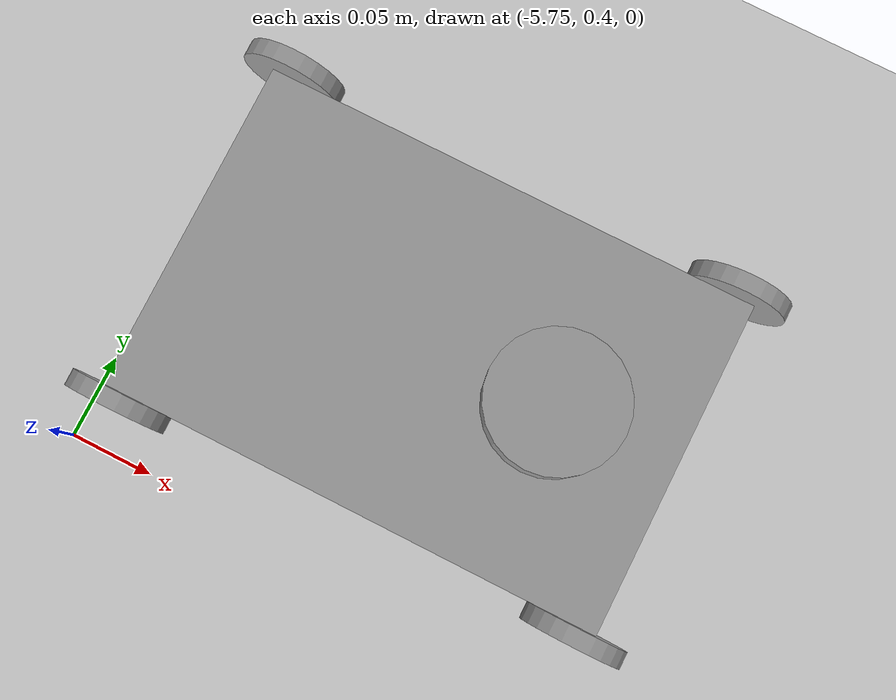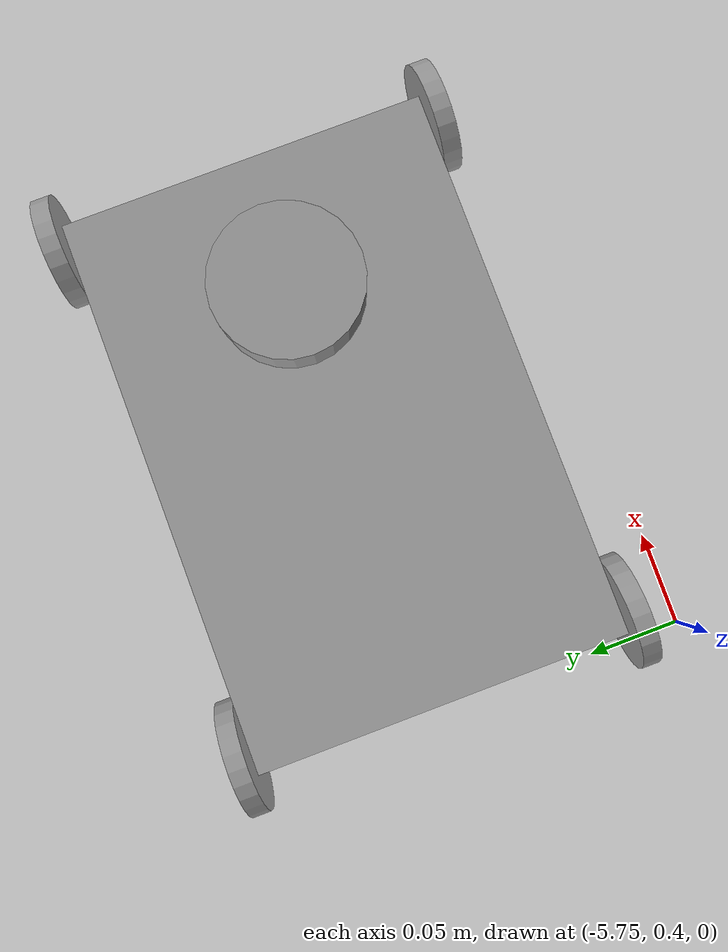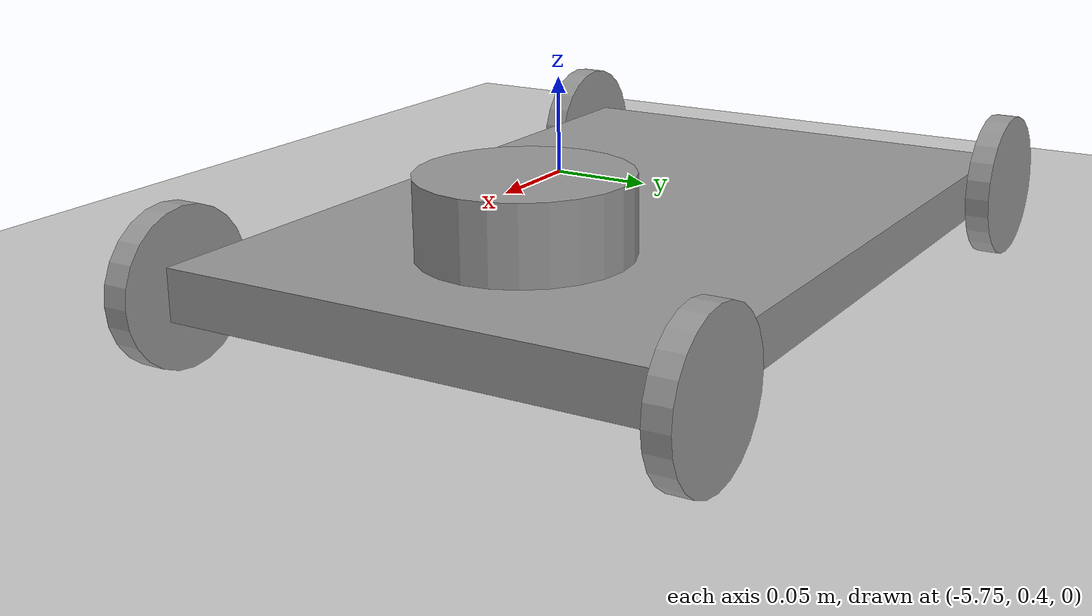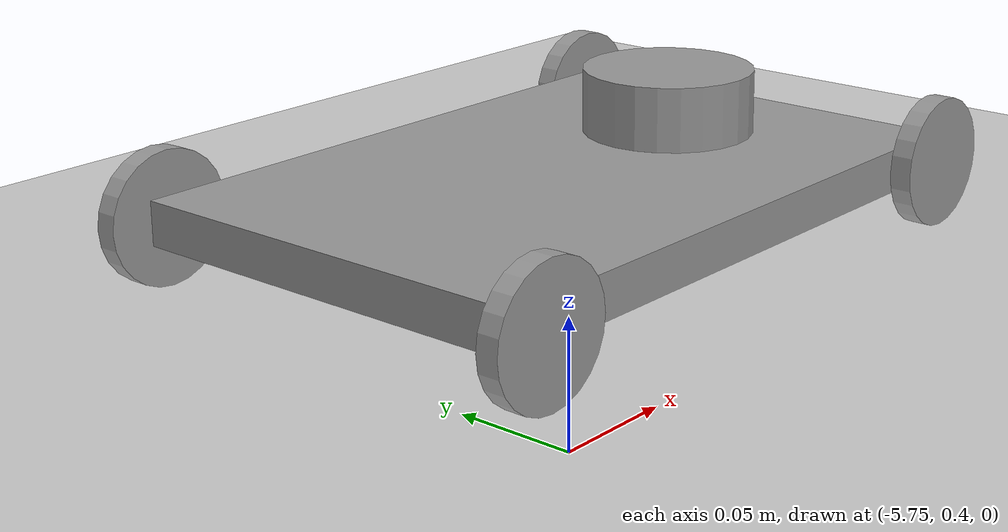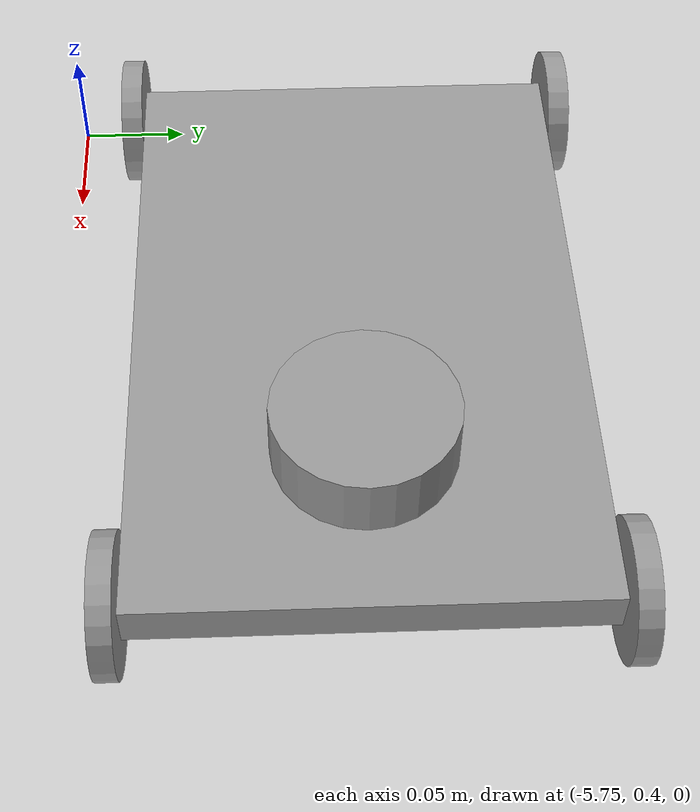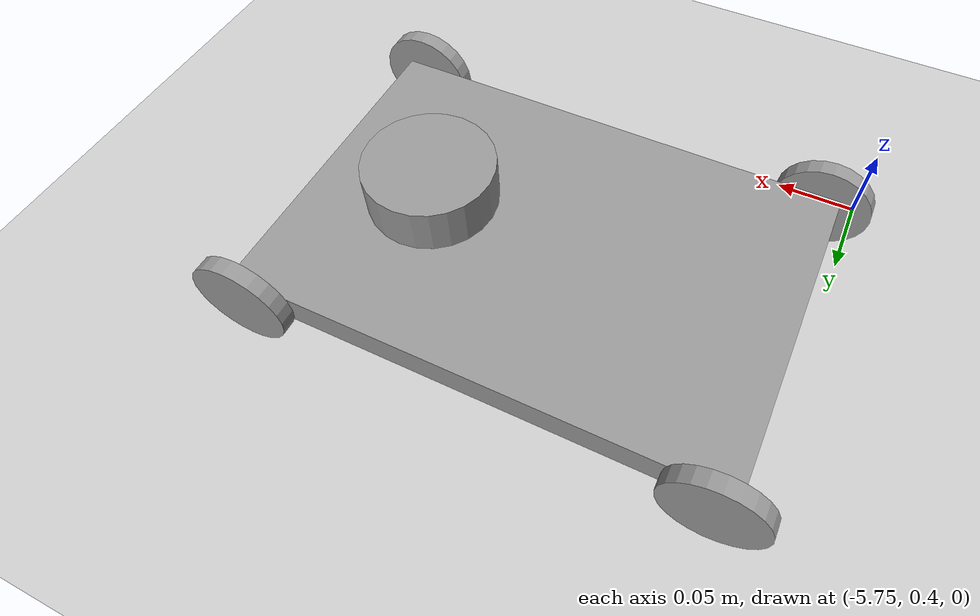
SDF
<sdf version="1.6">
 <world name="default">
  <model name="ground_plane">
   <static>1</static>
   <link name="link">
    <collision name="collision">
     <geometry><plane><normal>0 0 1</normal><size>100 100</size></plane></geometry>
     <surface><friction><ode><mu>100</mu><mu2>50</mu2></ode></friction></surface>
    </collision>
    <visual name="visual">
     <cast_shadows>0</cast_shadows>
     <geometry><plane><normal>0 0 1</normal><size>100 100</size></plane></geometry>
     <material>
      <script><uri>file://media/materials/scripts/gazebo.material</uri><name>Gazebo/Grey</name></script>
     </material>
    </visual>
   </link>
  </model>
  <model name="myrobot">
   <link name="link_0">
    <pose>-0.079072 0.08625 0.009834 0 -0 0</pose>
    <inertial>
     <mass>1</mass>
     <inertia>
      <ixx>0.166667</ixx>
      <ixy>0</ixy>
      <ixz>0</ixz>
      <iyy>0.166667</iyy>
      <iyz>0</iyz>
      <izz>0.166667</izz>
     </inertia>
     <pose>0 0 0.03 0 -0 0</pose>
    </inertial>
    <visual name="visual">
     <pose>0 0 0.03 0 -0 0</pose>
     <geometry><box><size>0.3 0.2 0.02</size></box></geometry>
     <material>
      <lighting>1</lighting>
      <script><uri>file://media/materials/scripts/gazebo.material</uri><name>Gazebo/Grey</name></script>
      <shader type="pixel"><normal_map>__default__</normal_map></shader>
      <ambient>0.3 0.3 0.3 1</ambient>
      <diffuse>0.7 0.7 0.7 1</diffuse>
      <specular>0.01 0.01 0.01 1</specular>
      <emissive>0 0 0 1</emissive>
     </material>
    </visual>
    <collision name="collision">
     <pose>0 0 0.03 0 -0 0</pose>
     <geometry><box><size>0.3 0.2 0.02</size></box></geometry>
     <surface>
      <friction>
       <ode><mu>1</mu><mu2>1</mu2><fdir1>0 0 0</fdir1><slip1>0</slip1><slip2>0</slip2></ode>
       <torsional>
        <coefficient>1</coefficient>
        <patch_radius>0</patch_radius>
        <surface_radius>0</surface_radius>
        <use_patch_radius>1</use_patch_radius>
        <ode><slip>0</slip></ode>
       </torsional>
      </friction>
      <bounce><restitution_coefficient>0</restitution_coefficient><threshold>1e+06</threshold></bounce>
      <contact>
       <collide_without_contact>0</collide_without_contact>
       <collide_without_contact_bitmask>1</collide_without_contact_bitmask>
       <collide_bitmask>1</collide_bitmask>
       <ode>
        <soft_cfm>0</soft_cfm>
        <soft_erp>0.2</soft_erp>
        <kp>1e+13</kp>
        <kd>1</kd>
        <max_vel>0.01</max_vel>
        <min_depth>0</min_depth>
       </ode>
       <bullet>
        <split_impulse>1</split_impulse>
        <split_impulse_penetration_threshold>-0.01</split_impulse_penetration_threshold>
        <soft_cfm>0</soft_cfm>
        <soft_erp>0.2</soft_erp>
        <kp>1e+13</kp>
        <kd>1</kd>
       </bullet>
      </contact>
     </surface>
    </collision>
   </link>
   <link name="link_1">
    <pose>0.060928 -0.01875 0.039833 1.5708 -0 0</pose>
    <inertial>
     <mass>1</mass>
     <inertia><ixx>0.145833</ixx><ixy>0</ixy><ixz>0</ixz><iyy>0.145833</iyy><iyz>0</iyz><izz>0.125</izz></inertia>
    </inertial>
    <visual name="visual">
     <geometry><cylinder><radius>0.03</radius><length>0.01</length></cylinder></geometry>
     <material>
      <lighting>1</lighting>
      <script><uri>file://media/materials/scripts/gazebo.material</uri><name>Gazebo/Grey</name></script>
      <shader type="pixel"><normal_map>__default__</normal_map></shader>
      <ambient>0.3 0.3 0.3 1</ambient>
      <diffuse>0.7 0.7 0.7 1</diffuse>
      <specular>0.01 0.01 0.01 1</specular>
      <emissive>0 0 0 1</emissive>
     </material>
    </visual>
    <collision name="collision">
     <geometry><cylinder><radius>0.03</radius><length>0.01</length></cylinder></geometry>
     <surface>
      <friction>
       <ode><mu>1</mu><mu2>1</mu2><fdir1>0 0 0</fdir1><slip1>0</slip1><slip2>0</slip2></ode>
       <torsional>
        <coefficient>1</coefficient>
        <patch_radius>0</patch_radius>
        <surface_radius>0</surface_radius>
        <use_patch_radius>1</use_patch_radius>
        <ode><slip>0</slip></ode>
       </torsional>
      </friction>
      <bounce><restitution_coefficient>0</restitution_coefficient><threshold>1e+06</threshold></bounce>
      <contact>
       <collide_without_contact>0</collide_without_contact>
       <collide_without_contact_bitmask>1</collide_without_contact_bitmask>
       <collide_bitmask>1</collide_bitmask>
       <ode>
        <soft_cfm>0</soft_cfm>
        <soft_erp>0.2</soft_erp>
        <kp>1e+13</kp>
        <kd>1</kd>
        <max_vel>0.01</max_vel>
        <min_depth>0</min_depth>
       </ode>
       <bullet>
        <split_impulse>1</split_impulse>
        <split_impulse_penetration_threshold>-0.01</split_impulse_penetration_threshold>
        <soft_cfm>0</soft_cfm>
        <soft_erp>0.2</soft_erp>
        <kp>1e+13</kp>
        <kd>1</kd>
       </bullet>
      </contact>
     </surface>
    </collision>
   </link>
   <link name="link_1_clone">
    <pose>-0.219072 -0.01875 0.039833 1.5708 -0 0</pose>
    <inertial>
     <mass>1</mass>
     <inertia><ixx>0.145833</ixx><ixy>0</ixy><ixz>0</ixz><iyy>0.145833</iyy><iyz>0</iyz><izz>0.125</izz></inertia>
    </inertial>
    <visual name="visual">
     <geometry><cylinder><radius>0.03</radius><length>0.01</length></cylinder></geometry>
     <material>
      <lighting>1</lighting>
      <script><uri>file://media/materials/scripts/gazebo.material</uri><name>Gazebo/Grey</name></script>
      <shader type="pixel"><normal_map>__default__</normal_map></shader>
      <ambient>0.3 0.3 0.3 1</ambient>
      <diffuse>0.7 0.7 0.7 1</diffuse>
      <specular>0.01 0.01 0.01 1</specular>
      <emissive>0 0 0 1</emissive>
     </material>
    </visual>
    <collision name="collision">
     <geometry><cylinder><radius>0.03</radius><length>0.01</length></cylinder></geometry>
     <surface>
      <friction>
       <ode><mu>1</mu><mu2>1</mu2><fdir1>0 0 0</fdir1><slip1>0</slip1><slip2>0</slip2></ode>
       <torsional>
        <coefficient>1</coefficient>
        <patch_radius>0</patch_radius>
        <surface_radius>0</surface_radius>
        <use_patch_radius>1</use_patch_radius>
        <ode><slip>0</slip></ode>
       </torsional>
      </friction>
      <bounce><restitution_coefficient>0</restitution_coefficient><threshold>1e+06</threshold></bounce>
      <contact>
       <collide_without_contact>0</collide_without_contact>
       <collide_without_contact_bitmask>1</collide_without_contact_bitmask>
       <collide_bitmask>1</collide_bitmask>
       <ode>
        <soft_cfm>0</soft_cfm>
        <soft_erp>0.2</soft_erp>
        <kp>1e+13</kp>
        <kd>1</kd>
        <max_vel>0.01</max_vel>
        <min_depth>0</min_depth>
       </ode>
       <bullet>
        <split_impulse>1</split_impulse>
        <split_impulse_penetration_threshold>-0.01</split_impulse_penetration_threshold>
        <soft_cfm>0</soft_cfm>
        <soft_erp>0.2</soft_erp>
        <kp>1e+13</kp>
        <kd>1</kd>
       </bullet>
      </contact>
     </surface>
    </collision>
   </link>
   <link name="link_1_clone_0">
    <pose>-0.219072 0.19125 0.039833 1.5708 -0 0</pose>
    <inertial>
     <mass>1</mass>
     <inertia><ixx>0.145833</ixx><ixy>0</ixy><ixz>0</ixz><iyy>0.145833</iyy><iyz>0</iyz><izz>0.125</izz></inertia>
    </inertial>
    <visual name="visual">
     <geometry><cylinder><radius>0.03</radius><length>0.01</length></cylinder></geometry>
     <material>
      <lighting>1</lighting>
      <script><uri>file://media/materials/scripts/gazebo.material</uri><name>Gazebo/Grey</name></script>
      <shader type="pixel"><normal_map>__default__</normal_map></shader>
      <ambient>0.3 0.3 0.3 1</ambient>
      <diffuse>0.7 0.7 0.7 1</diffuse>
      <specular>0.01 0.01 0.01 1</specular>
      <emissive>0 0 0 1</emissive>
     </material>
    </visual>
    <collision name="collision">
     <geometry><cylinder><radius>0.03</radius><length>0.01</length></cylinder></geometry>
     <surface>
      <friction>
       <ode><mu>1</mu><mu2>1</mu2><fdir1>0 0 0</fdir1><slip1>0</slip1><slip2>0</slip2></ode>
       <torsional>
        <coefficient>1</coefficient>
        <patch_radius>0</patch_radius>
        <surface_radius>0</surface_radius>
        <use_patch_radius>1</use_patch_radius>
        <ode><slip>0</slip></ode>
       </torsional>
      </friction>
      <bounce><restitution_coefficient>0</restitution_coefficient><threshold>1e+06</threshold></bounce>
      <contact>
       <collide_without_contact>0</collide_without_contact>
       <collide_without_contact_bitmask>1</collide_without_contact_bitmask>
       <collide_bitmask>1</collide_bitmask>
       <ode>
        <soft_cfm>0</soft_cfm>
        <soft_erp>0.2</soft_erp>
        <kp>1e+13</kp>
        <kd>1</kd>
        <max_vel>0.01</max_vel>
        <min_depth>0</min_depth>
       </ode>
       <bullet>
        <split_impulse>1</split_impulse>
        <split_impulse_penetration_threshold>-0.01</split_impulse_penetration_threshold>
        <soft_cfm>0</soft_cfm>
        <soft_erp>0.2</soft_erp>
        <kp>1e+13</kp>
        <kd>1</kd>
       </bullet>
      </contact>
     </surface>
    </collision>
   </link>
   <link name="link_1_clone_1">
    <pose>0.060928 0.19125 0.039833 1.5708 -0 0</pose>
    <inertial>
     <mass>1</mass>
     <inertia><ixx>0.145833</ixx><ixy>0</ixy><ixz>0</ixz><iyy>0.145833</iyy><iyz>0</iyz><izz>0.125</izz></inertia>
    </inertial>
    <visual name="visual">
     <geometry><cylinder><radius>0.03</radius><length>0.01</length></cylinder></geometry>
     <material>
      <lighting>1</lighting>
      <script><uri>file://media/materials/scripts/gazebo.material</uri><name>Gazebo/Grey</name></script>
      <shader type="pixel"><normal_map>__default__</normal_map></shader>
      <ambient>0.3 0.3 0.3 1</ambient>
      <diffuse>0.7 0.7 0.7 1</diffuse>
      <specular>0.01 0.01 0.01 1</specular>
      <emissive>0 0 0 1</emissive>
     </material>
    </visual>
    <collision name="collision">
     <geometry><cylinder><radius>0.03</radius><length>0.01</length></cylinder></geometry>
     <surface>
      <friction>
       <ode><mu>1</mu><mu2>1</mu2><fdir1>0 0 0</fdir1><slip1>0</slip1><slip2>0</slip2></ode>
       <torsional>
        <coefficient>1</coefficient>
        <patch_radius>0</patch_radius>
        <surface_radius>0</surface_radius>
        <use_patch_radius>1</use_patch_radius>
        <ode><slip>0</slip></ode>
       </torsional>
      </friction>
      <bounce><restitution_coefficient>0</restitution_coefficient><threshold>1e+06</threshold></bounce>
      <contact>
       <collide_without_contact>0</collide_without_contact>
       <collide_without_contact_bitmask>1</collide_without_contact_bitmask>
       <collide_bitmask>1</collide_bitmask>
       <ode>
        <soft_cfm>0</soft_cfm>
        <soft_erp>0.2</soft_erp>
        <kp>1e+13</kp>
        <kd>1</kd>
        <max_vel>0.01</max_vel>
        <min_depth>0</min_depth>
       </ode>
       <bullet>
        <split_impulse>1</split_impulse>
        <split_impulse_penetration_threshold>-0.01</split_impulse_penetration_threshold>
        <soft_cfm>0</soft_cfm>
        <soft_erp>0.2</soft_erp>
        <kp>1e+13</kp>
        <kd>1</kd>
       </bullet>
      </contact>
     </surface>
    </collision>
   </link>
   <link name="link_2">
    <pose>-0.004072 0.08625 0.064834 0 -0 0</pose>
    <inertial>
     <mass>1</mass>
     <inertia><ixx>0.145833</ixx><ixy>0</ixy><ixz>0</ixz><iyy>0.145833</iyy><iyz>0</iyz><izz>0.125</izz></inertia>
    </inertial>
    <visual name="visual">
     <geometry><cylinder><radius>0.04</radius><length>0.03</length></cylinder></geometry>
     <material>
      <lighting>1</lighting>
      <script><uri>file://media/materials/scripts/gazebo.material</uri><name>Gazebo/Grey</name></script>
      <shader type="pixel"><normal_map>__default__</normal_map></shader>
      <ambient>0.3 0.3 0.3 1</ambient>
      <diffuse>0.7 0.7 0.7 1</diffuse>
      <specular>0.01 0.01 0.01 1</specular>
      <emissive>0 0 0 1</emissive>
     </material>
    </visual>
    <collision name="collision">
     <geometry><cylinder><radius>0.04</radius><length>0.03</length></cylinder></geometry>
     <surface>
      <friction>
       <ode><mu>1</mu><mu2>1</mu2><fdir1>0 0 0</fdir1><slip1>0</slip1><slip2>0</slip2></ode>
       <torsional>
        <coefficient>1</coefficient>
        <patch_radius>0</patch_radius>
        <surface_radius>0</surface_radius>
        <use_patch_radius>1</use_patch_radius>
        <ode><slip>0</slip></ode>
       </torsional>
      </friction>
      <bounce><restitution_coefficient>0</restitution_coefficient><threshold>1e+06</threshold></bounce>
      <contact>
       <collide_without_contact>0</collide_without_contact>
       <collide_without_contact_bitmask>1</collide_without_contact_bitmask>
       <collide_bitmask>1</collide_bitmask>
       <ode>
        <soft_cfm>0</soft_cfm>
        <soft_erp>0.2</soft_erp>
        <kp>1e+13</kp>
        <kd>1</kd>
        <max_vel>0.01</max_vel>
        <min_depth>0</min_depth>
       </ode>
       <bullet>
        <split_impulse>1</split_impulse>
        <split_impulse_penetration_threshold>-0.01</split_impulse_penetration_threshold>
        <soft_cfm>0</soft_cfm>
        <soft_erp>0.2</soft_erp>
        <kp>1e+13</kp>
        <kd>1</kd>
       </bullet>
      </contact>
     </surface>
    </collision>
   </link>
   <joint name="link_0_JOINT_0" type="revolute">
    <parent>link_0</parent>
    <child>link_1</child>
    <axis>
     <xyz>0 0 1</xyz>
     <use_parent_model_frame>0</use_parent_model_frame>
     <limit>
      <lower>-1.79769e+308</lower>
      <upper>1.79769e+308</upper>
      <effort>-1</effort>
      <velocity>-1</velocity>
     </limit>
     <dynamics>
      <spring_reference>0</spring_reference>
      <spring_stiffness>0</spring_stiffness>
      <damping>0</damping>
     </dynamics>
    </axis>
    <physics>
     <ode><limit><cfm>0</cfm><erp>0.2</erp></limit><suspension><cfm>0</cfm><erp>0.2</erp></suspension></ode>
    </physics>
   </joint>
   <joint name="link_0_JOINT_1" type="revolute">
    <parent>link_0</parent>
    <child>link_1_clone_1</child>
    <axis>
     <xyz>0 0 1</xyz>
     <use_parent_model_frame>0</use_parent_model_frame>
     <limit>
      <lower>-1.79769e+308</lower>
      <upper>1.79769e+308</upper>
      <effort>-1</effort>
      <velocity>-1</velocity>
     </limit>
     <dynamics>
      <spring_reference>0</spring_reference>
      <spring_stiffness>0</spring_stiffness>
      <damping>0</damping>
     </dynamics>
    </axis>
    <physics>
     <ode><limit><cfm>0</cfm><erp>0.2</erp></limit><suspension><cfm>0</cfm><erp>0.2</erp></suspension></ode>
    </physics>
   </joint>
   <joint name="link_0_JOINT_2" type="revolute">
    <parent>link_0</parent>
    <child>link_1_clone_0</child>
    <axis>
     <xyz>0 0 1</xyz>
     <use_parent_model_frame>0</use_parent_model_frame>
     <limit>
      <lower>-1.79769e+308</lower>
      <upper>1.79769e+308</upper>
      <effort>-1</effort>
      <velocity>-1</velocity>
     </limit>
     <dynamics>
      <spring_reference>0</spring_reference>
      <spring_stiffness>0</spring_stiffness>
      <damping>0</damping>
     </dynamics>
    </axis>
    <physics>
     <ode><limit><cfm>0</cfm><erp>0.2</erp></limit><suspension><cfm>0</cfm><erp>0.2</erp></suspension></ode>
    </physics>
   </joint>
   <joint name="link_0_JOINT_3" type="revolute">
    <parent>link_0</parent>
    <child>link_1_clone</child>
    <axis>
     <xyz>0 0 1</xyz>
     <use_parent_model_frame>0</use_parent_model_frame>
     <limit>
      <lower>-1.79769e+308</lower>
      <upper>1.79769e+308</upper>
      <effort>-1</effort>
      <velocity>-1</velocity>
     </limit>
     <dynamics>
      <spring_reference>0</spring_reference>
      <spring_stiffness>0</spring_stiffness>
      <damping>0</damping>
     </dynamics>
    </axis>
    <physics>
     <ode><limit><cfm>0</cfm><erp>0.2</erp></limit><suspension><cfm>0</cfm><erp>0.2</erp></suspension></ode>
    </physics>
   </joint>
   <joint name="link_0_JOINT_4" type="revolute">
    <parent>link_0</parent>
    <child>link_2</child>
    <axis>
     <xyz>0 0 1</xyz>
     <use_parent_model_frame>0</use_parent_model_frame>
     <limit>
      <lower>-1.79769e+308</lower>
      <upper>1.79769e+308</upper>
      <effort>-1</effort>
      <velocity>-1</velocity>
     </limit>
     <dynamics>
      <spring_reference>0</spring_reference>
      <spring_stiffness>0</spring_stiffness>
      <damping>0</damping>
     </dynamics>
    </axis>
    <physics>
     <ode><limit><cfm>0</cfm><erp>0.2</erp></limit><suspension><cfm>0</cfm><erp>0.2</erp></suspension></ode>
    </physics>
   </joint>
   <static>0</static>
   <pose>-5.50984 0.448397 -0.009833 0 0 -0.000488</pose>
  </model>
 </world>
</sdf>
